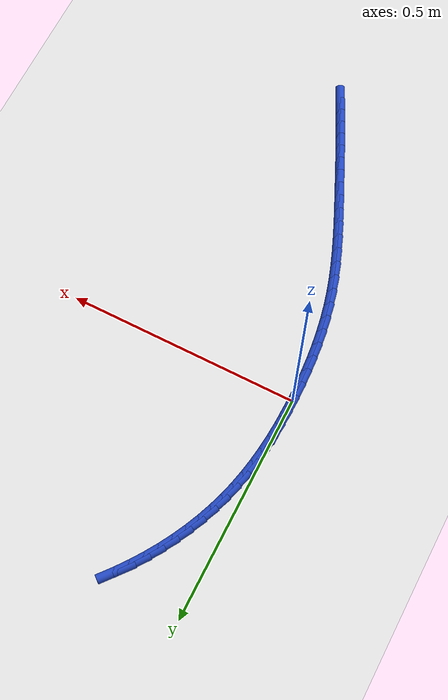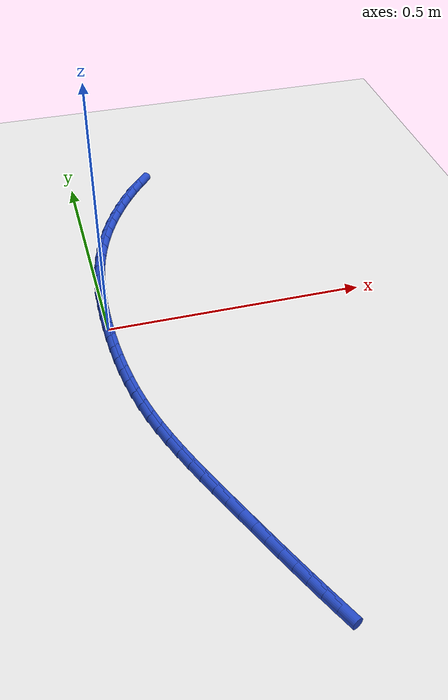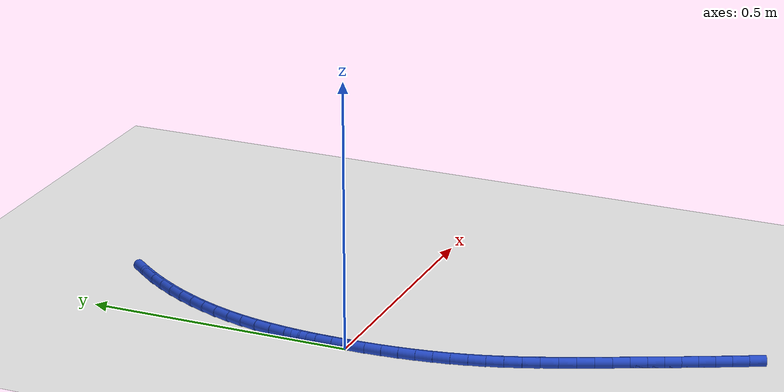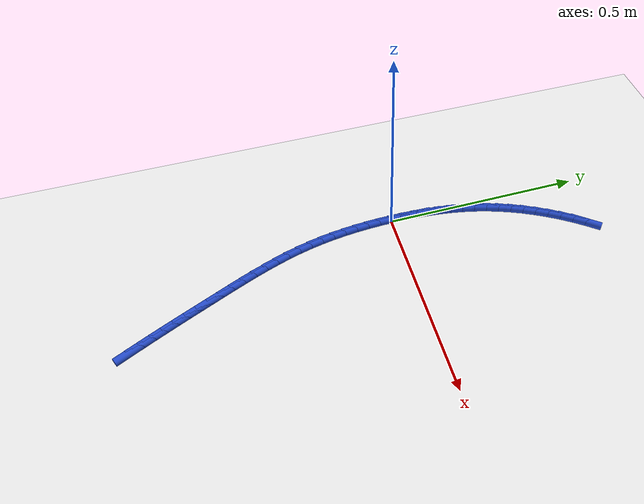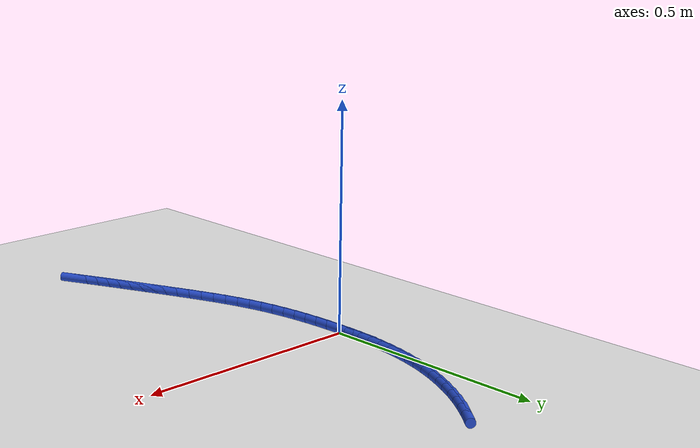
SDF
<sdf version="1.6">
 <world name="default">
  <model name="ground_plane">
   <static>1</static>
   <link name="link">
    <collision name="collision">
     <geometry><plane><normal>0 0 1</normal><size>100 100</size></plane></geometry>
     <surface><friction><ode><mu>100</mu><mu2>50</mu2></ode></friction></surface>
    </collision>
    <visual name="visual">
     <cast_shadows>0</cast_shadows>
     <geometry><plane><normal>0 0 1</normal><size>100 100</size></plane></geometry>
     <material>
      <script><uri>file://media/materials/scripts/gazebo.material</uri><name>Gazebo/WhiteGlow</name></script>
     </material>
    </visual>
   </link>
  </model>
  <model name="line">
   <link name="link_0">
    <pose>-1.3010426069826053e-18 -2.0816681711721685e-17 0.01 0 1.57 1.5652417687050806</pose>
    <collision name="collision">
     <geometry><cylinder><radius>0.01</radius><length>0.08</length></cylinder></geometry>
    </collision>
    <visual name="visual">
     <material>
      <script><name>Gazebo/Blue</name><uri>file://media/materials/scripts/gazebo.material</uri></script>
     </material>
     <geometry><cylinder><radius>0.01</radius><length>0.08</length></cylinder></geometry>
    </visual>
   </link>
   <link name="link_1">
    <pose>0.0001733001976537485 0.031199316410812177 0.01 0 1.57 1.53811177170229</pose>
    <collision name="collision">
     <geometry><cylinder><radius>0.01</radius><length>0.08</length></cylinder></geometry>
    </collision>
    <visual name="visual">
     <material>
      <script><name>Gazebo/Blue</name><uri>file://media/materials/scripts/gazebo.material</uri></script>
     </material>
     <geometry><cylinder><radius>0.01</radius><length>0.08</length></cylinder></geometry>
    </visual>
   </link>
   <link name="link_2">
    <pose>0.0011924847750177342 0.06237066397072591 0.01 0 1.57 1.5073699337999211</pose>
    <collision name="collision">
     <geometry><cylinder><radius>0.01</radius><length>0.08</length></cylinder></geometry>
    </collision>
    <visual name="visual">
     <material>
      <script><name>Gazebo/Blue</name><uri>file://media/materials/scripts/gazebo.material</uri></script>
     </material>
     <geometry><cylinder><radius>0.01</radius><length>0.08</length></cylinder></geometry>
    </visual>
   </link>
   <link name="link_3">
    <pose>0.0031680086409162783 0.09347560223872242 0.01 0 1.57 1.4729705740794885</pose>
    <collision name="collision">
     <geometry><cylinder><radius>0.01</radius><length>0.08</length></cylinder></geometry>
    </collision>
    <visual name="visual">
     <material>
      <script><name>Gazebo/Blue</name><uri>file://media/materials/scripts/gazebo.material</uri></script>
     </material>
     <geometry><cylinder><radius>0.01</radius><length>0.08</length></cylinder></geometry>
    </visual>
   </link>
   <link name="link_4">
    <pose>0.006210326704173702 0.12447569077378302 0.01 0 1.57 1.4348925035926217</pose>
    <collision name="collision">
     <geometry><cylinder><radius>0.01</radius><length>0.08</length></cylinder></geometry>
    </collision>
    <visual name="visual">
     <material>
      <script><name>Gazebo/Blue</name><uri>file://media/materials/scripts/gazebo.material</uri></script>
     </material>
     <geometry><cylinder><radius>0.01</radius><length>0.08</length></cylinder></geometry>
    </visual>
   </link>
   <link name="link_5">
    <pose>0.01042989387361433 0.155332489134889 0.01 0 1.57 1.3931531087541023</pose>
    <collision name="collision">
     <geometry><cylinder><radius>0.01</radius><length>0.08</length></cylinder></geometry>
    </collision>
    <visual name="visual">
     <material>
      <script><name>Gazebo/Blue</name><uri>file://media/materials/scripts/gazebo.material</uri></script>
     </material>
     <geometry><cylinder><radius>0.01</radius><length>0.08</length></cylinder></geometry>
    </visual>
   </link>
   <link name="link_6">
    <pose>0.01593716505806247 0.18600755688102155 0.01 0 1.57 1.3478236340478975</pose>
    <collision name="collision">
     <geometry><cylinder><radius>0.01</radius><length>0.08</length></cylinder></geometry>
    </collision>
    <visual name="visual">
     <material>
      <script><name>Gazebo/Blue</name><uri>file://media/materials/scripts/gazebo.material</uri></script>
     </material>
     <geometry><cylinder><radius>0.01</radius><length>0.08</length></cylinder></geometry>
    </visual>
   </link>
   <link name="link_7">
    <pose>0.022842595166342457 0.21646245357116203 0.01 0 1.57 1.2990565114552943</pose>
    <collision name="collision">
     <geometry><cylinder><radius>0.01</radius><length>0.08</length></cylinder></geometry>
    </collision>
    <visual name="visual">
     <material>
      <script><name>Gazebo/Blue</name><uri>file://media/materials/scripts/gazebo.material</uri></script>
     </material>
     <geometry><cylinder><radius>0.01</radius><length>0.08</length></cylinder></geometry>
    </visual>
   </link>
   <link name="link_8">
    <pose>0.031256233099674874 0.24665867801433464 0.01 0 1.57 1.2485645808949022</pose>
    <collision name="collision">
     <geometry><cylinder><radius>0.01</radius><length>0.08</length></cylinder></geometry>
    </collision>
    <visual name="visual">
     <material>
      <script><name>Gazebo/Blue</name><uri>file://media/materials/scripts/gazebo.material</uri></script>
     </material>
     <geometry><cylinder><radius>0.01</radius><length>0.08</length></cylinder></geometry>
    </visual>
   </link>
   <link name="link_9">
    <pose>0.041235965954750826 0.27654992417217855 0.01 0 1.57 1.199347240741251</pose>
    <collision name="collision">
     <geometry><cylinder><radius>0.01</radius><length>0.08</length></cylinder></geometry>
    </collision>
    <visual name="visual">
     <material>
      <script><name>Gazebo/Blue</name><uri>file://media/materials/scripts/gazebo.material</uri></script>
     </material>
     <geometry><cylinder><radius>0.01</radius><length>0.08</length></cylinder></geometry>
    </visual>
   </link>
   <link name="link_10">
    <pose>0.0527367000599913 0.3060744772376519 0.01 0 1.57 1.1516035880465487</pose>
    <collision name="collision">
     <geometry><cylinder><radius>0.01</radius><length>0.08</length></cylinder></geometry>
    </collision>
    <visual name="visual">
     <material>
      <script><name>Gazebo/Blue</name><uri>file://media/materials/scripts/gazebo.material</uri></script>
     </material>
     <geometry><cylinder><radius>0.01</radius><length>0.08</length></cylinder></geometry>
    </visual>
   </link>
   <link name="link_11">
    <pose>0.0657012727735915 0.3351688165522568 0.01 0 1.57 1.1051662196073389</pose>
    <collision name="collision">
     <geometry><cylinder><radius>0.01</radius><length>0.08</length></cylinder></geometry>
    </collision>
    <visual name="visual">
     <material>
      <script><name>Gazebo/Blue</name><uri>file://media/materials/scripts/gazebo.material</uri></script>
     </material>
     <geometry><cylinder><radius>0.01</radius><length>0.08</length></cylinder></geometry>
    </visual>
   </link>
   <link name="link_12">
    <pose>0.08007252145374649 0.3637694214574944 0.01 0 1.57 1.0598605843184021</pose>
    <collision name="collision">
     <geometry><cylinder><radius>0.01</radius><length>0.08</length></cylinder></geometry>
    </collision>
    <visual name="visual">
     <material>
      <script><name>Gazebo/Blue</name><uri>file://media/materials/scripts/gazebo.material</uri></script>
     </material>
     <geometry><cylinder><radius>0.01</radius><length>0.08</length></cylinder></geometry>
    </visual>
   </link>
   <link name="link_13">
    <pose>0.09579328345865135 0.39181277129486636 0.01 0 1.57 1.0155078279892866</pose>
    <collision name="collision">
     <geometry><cylinder><radius>0.01</radius><length>0.08</length></cylinder></geometry>
    </collision>
    <visual name="visual">
     <material>
      <script><name>Gazebo/Blue</name><uri>file://media/materials/scripts/gazebo.material</uri></script>
     </material>
     <geometry><cylinder><radius>0.01</radius><length>0.08</length></cylinder></geometry>
    </visual>
   </link>
   <link name="link_14">
    <pose>0.11280639614650119 0.41923534540587415 0.01 0 1.57 0.9719267776762458</pose>
    <collision name="collision">
     <geometry><cylinder><radius>0.01</radius><length>0.08</length></cylinder></geometry>
    </collision>
    <visual name="visual">
     <material>
      <script><name>Gazebo/Blue</name><uri>file://media/materials/scripts/gazebo.material</uri></script>
     </material>
     <geometry><cylinder><radius>0.01</radius><length>0.08</length></cylinder></geometry>
    </visual>
   </link>
   <link name="link_15">
    <pose>0.13105469687549107 0.4459736231320193 0.01 0 1.57 0.9289352324854522</pose>
    <collision name="collision">
     <geometry><cylinder><radius>0.01</radius><length>0.08</length></cylinder></geometry>
    </collision>
    <visual name="visual">
     <material>
      <script><name>Gazebo/Blue</name><uri>file://media/materials/scripts/gazebo.material</uri></script>
     </material>
     <geometry><cylinder><radius>0.01</radius><length>0.08</length></cylinder></geometry>
    </visual>
   </link>
   <link name="link_16">
    <pose>0.1504810230038161 0.4719640838148034 0.01 0 1.57 0.8863507195687078</pose>
    <collision name="collision">
     <geometry><cylinder><radius>0.01</radius><length>0.08</length></cylinder></geometry>
    </collision>
    <visual name="visual">
     <material>
      <script><name>Gazebo/Blue</name><uri>file://media/materials/scripts/gazebo.material</uri></script>
     </material>
     <geometry><cylinder><radius>0.01</radius><length>0.08</length></cylinder></geometry>
    </visual>
   </link>
   <link name="link_237">
    <pose>0.20710013761552107 -0.6676483898030733 0.01 0 1.57 -1.1250208477057841</pose>
    <collision name="collision">
     <geometry><cylinder><radius>0.01</radius><length>0.08</length></cylinder></geometry>
    </collision>
    <visual name="visual">
     <material>
      <script><name>Gazebo/Blue</name><uri>file://media/materials/scripts/gazebo.material</uri></script>
     </material>
     <geometry><cylinder><radius>0.01</radius><length>0.08</length></cylinder></geometry>
    </visual>
   </link>
   <link name="link_238">
    <pose>0.19410645324256223 -0.6404567219765179 0.01 0 1.57 -1.1323249458108247</pose>
    <collision name="collision">
     <geometry><cylinder><radius>0.01</radius><length>0.08</length></cylinder></geometry>
    </collision>
    <visual name="visual">
     <material>
      <script><name>Gazebo/Blue</name><uri>file://media/materials/scripts/gazebo.material</uri></script>
     </material>
     <geometry><cylinder><radius>0.01</radius><length>0.08</length></cylinder></geometry>
    </visual>
   </link>
   <link name="link_239">
    <pose>0.18144686077489933 -0.6134590631828972 0.01 0 1.57 -1.1387346182100748</pose>
    <collision name="collision">
     <geometry><cylinder><radius>0.01</radius><length>0.08</length></cylinder></geometry>
    </collision>
    <visual name="visual">
     <material>
      <script><name>Gazebo/Blue</name><uri>file://media/materials/scripts/gazebo.material</uri></script>
     </material>
     <geometry><cylinder><radius>0.01</radius><length>0.08</length></cylinder></geometry>
    </visual>
   </link>
   <link name="link_240">
    <pose>0.1690454314908992 -0.586564842403847 0.01 0 1.57 -1.1441565740283657</pose>
    <collision name="collision">
     <geometry><cylinder><radius>0.01</radius><length>0.08</length></cylinder></geometry>
    </collision>
    <visual name="visual">
     <material>
      <script><name>Gazebo/Blue</name><uri>file://media/materials/scripts/gazebo.material</uri></script>
     </material>
     <geometry><cylinder><radius>0.01</radius><length>0.08</length></cylinder></geometry>
    </visual>
   </link>
   <link name="link_241">
    <pose>0.15682623666892873 -0.5596834886210011 0.01 0 1.57 -1.1485189822893829</pose>
    <collision name="collision">
     <geometry><cylinder><radius>0.01</radius><length>0.08</length></cylinder></geometry>
    </collision>
    <visual name="visual">
     <material>
      <script><name>Gazebo/Blue</name><uri>file://media/materials/scripts/gazebo.material</uri></script>
     </material>
     <geometry><cylinder><radius>0.01</radius><length>0.08</length></cylinder></geometry>
    </visual>
   </link>
   <link name="link_242">
    <pose>0.14471334758735482 -0.5327244308159954 0.01 0 1.57 -1.1517744032294301</pose>
    <collision name="collision">
     <geometry><cylinder><radius>0.01</radius><length>0.08</length></cylinder></geometry>
    </collision>
    <visual name="visual">
     <material>
      <script><name>Gazebo/Blue</name><uri>file://media/materials/scripts/gazebo.material</uri></script>
     </material>
     <geometry><cylinder><radius>0.01</radius><length>0.08</length></cylinder></geometry>
    </visual>
   </link>
   <link name="link_243">
    <pose>0.13263083552454433 -0.505597097970464 0.01 0 1.57 -1.153901345103597</pose>
    <collision name="collision">
     <geometry><cylinder><radius>0.01</radius><length>0.08</length></cylinder></geometry>
    </collision>
    <visual name="visual">
     <material>
      <script><name>Gazebo/Blue</name><uri>file://media/materials/scripts/gazebo.material</uri></script>
     </material>
     <geometry><cylinder><radius>0.01</radius><length>0.08</length></cylinder></geometry>
    </visual>
   </link>
   <link name="link_244">
    <pose>0.1205027717588642 -0.4782109190660425 0.01 0 1.57 -1.1550465610794072</pose>
    <collision name="collision">
     <geometry><cylinder><radius>0.01</radius><length>0.08</length></cylinder></geometry>
    </collision>
    <visual name="visual">
     <material>
      <script><name>Gazebo/Blue</name><uri>file://media/materials/scripts/gazebo.material</uri></script>
     </material>
     <geometry><cylinder><radius>0.01</radius><length>0.08</length></cylinder></geometry>
    </visual>
   </link>
   <link name="link_245">
    <pose>0.10825902306594525 -0.45047777445755954 0.01 0 1.57 -1.1582907528378585</pose>
    <collision name="collision">
     <geometry><cylinder><radius>0.01</radius><length>0.08</length></cylinder></geometry>
    </collision>
    <visual name="visual">
     <material>
      <script><name>Gazebo/Blue</name><uri>file://media/materials/scripts/gazebo.material</uri></script>
     </material>
     <geometry><cylinder><radius>0.01</radius><length>0.08</length></cylinder></geometry>
    </visual>
   </link>
   <link name="link_246">
    <pose>0.09595557431664828 -0.4223628897960293 0.01 0 1.57 -1.1665178948832908</pose>
    <collision name="collision">
     <geometry><cylinder><radius>0.01</radius><length>0.08</length></cylinder></geometry>
    </collision>
    <visual name="visual">
     <material>
      <script><name>Gazebo/Blue</name><uri>file://media/materials/scripts/gazebo.material</uri></script>
     </material>
     <geometry><cylinder><radius>0.01</radius><length>0.08</length></cylinder></geometry>
    </visual>
   </link>
   <link name="link_247">
    <pose>0.08377066489794437 -0.3938832018161079 0.01 0 1.57 -1.1797796147102253</pose>
    <collision name="collision">
     <geometry><cylinder><radius>0.01</radius><length>0.08</length></cylinder></geometry>
    </collision>
    <visual name="visual">
     <material>
      <script><name>Gazebo/Blue</name><uri>file://media/materials/scripts/gazebo.material</uri></script>
     </material>
     <geometry><cylinder><radius>0.01</radius><length>0.08</length></cylinder></geometry>
    </visual>
   </link>
   <link name="link_248">
    <pose>0.07188755674374332 -0.3650577716839503 0.01 0 1.57 -1.1980853755874787</pose>
    <collision name="collision">
     <geometry><cylinder><radius>0.01</radius><length>0.08</length></cylinder></geometry>
    </collision>
    <visual name="visual">
     <material>
      <script><name>Gazebo/Blue</name><uri>file://media/materials/scripts/gazebo.material</uri></script>
     </material>
     <geometry><cylinder><radius>0.01</radius><length>0.08</length></cylinder></geometry>
    </visual>
   </link>
   <link name="link_249">
    <pose>0.060489511787954954 -0.33590566056571197 0.01 0 1.57 -1.2215130435790653</pose>
    <collision name="collision">
     <geometry><cylinder><radius>0.01</radius><length>0.08</length></cylinder></geometry>
    </collision>
    <visual name="visual">
     <material>
      <script><name>Gazebo/Blue</name><uri>file://media/materials/scripts/gazebo.material</uri></script>
     </material>
     <geometry><cylinder><radius>0.01</radius><length>0.08</length></cylinder></geometry>
    </visual>
   </link>
   <link name="link_250">
    <pose>0.04975979196448908 -0.3064459296275483 0.01 0 1.57 -1.2501947617181177</pose>
    <collision name="collision">
     <geometry><cylinder><radius>0.01</radius><length>0.08</length></cylinder></geometry>
    </collision>
    <visual name="visual">
     <material>
      <script><name>Gazebo/Blue</name><uri>file://media/materials/scripts/gazebo.material</uri></script>
     </material>
     <geometry><cylinder><radius>0.01</radius><length>0.08</length></cylinder></geometry>
    </visual>
   </link>
   <link name="link_251">
    <pose>0.03988165920725552 -0.2766976400356145 0.01 0 1.57 -1.2842996549846017</pose>
    <collision name="collision">
     <geometry><cylinder><radius>0.01</radius><length>0.08</length></cylinder></geometry>
    </collision>
    <visual name="visual">
     <material>
      <script><name>Gazebo/Blue</name><uri>file://media/materials/scripts/gazebo.material</uri></script>
     </material>
     <geometry><cylinder><radius>0.01</radius><length>0.08</length></cylinder></geometry>
    </visual>
   </link>
   <link name="link_252">
    <pose>0.03103837545016384 -0.24667985295606498 0.01 0 1.57 -1.3234430314377734</pose>
    <collision name="collision">
     <geometry><cylinder><radius>0.01</radius><length>0.08</length></cylinder></geometry>
    </collision>
    <visual name="visual">
     <material>
      <script><name>Gazebo/Blue</name><uri>file://media/materials/scripts/gazebo.material</uri></script>
     </material>
     <geometry><cylinder><radius>0.01</radius><length>0.08</length></cylinder></geometry>
    </visual>
   </link>
   <link name="link_253">
    <pose>0.02339511102132253 -0.21641244163901788 0.01 0 1.57 -1.3628777852357805</pose>
    <collision name="collision">
     <geometry><cylinder><radius>0.01</radius><length>0.08</length></cylinder></geometry>
    </collision>
    <visual name="visual">
     <material>
      <script><name>Gazebo/Blue</name><uri>file://media/materials/scripts/gazebo.material</uri></script>
     </material>
     <geometry><cylinder><radius>0.01</radius><length>0.08</length></cylinder></geometry>
    </visual>
   </link>
   <link name="link_254">
    <pose>0.016962666204848285 -0.185922208594388 0.01 0 1.57 -1.4000962983753673</pose>
    <collision name="collision">
     <geometry><cylinder><radius>0.01</radius><length>0.08</length></cylinder></geometry>
    </collision>
    <visual name="visual">
     <material>
      <script><name>Gazebo/Blue</name><uri>file://media/materials/scripts/gazebo.material</uri></script>
     </material>
     <geometry><cylinder><radius>0.01</radius><length>0.08</length></cylinder></geometry>
    </visual>
   </link>
   <link name="link_255">
    <pose>0.011673649791483671 -0.1552394661398082 0.01 0 1.57 -1.435031071179266</pose>
    <collision name="collision">
     <geometry><cylinder><radius>0.01</radius><length>0.08</length></cylinder></geometry>
    </collision>
    <visual name="visual">
     <material>
      <script><name>Gazebo/Blue</name><uri>file://media/materials/scripts/gazebo.material</uri></script>
     </material>
     <geometry><cylinder><radius>0.01</radius><length>0.08</length></cylinder></geometry>
    </visual>
   </link>
   <link name="link_256">
    <pose>0.007460061959191396 -0.12439455391191676 0.01 0 1.57 -1.4676614264057262</pose>
    <collision name="collision">
     <geometry><cylinder><radius>0.01</radius><length>0.08</length></cylinder></geometry>
    </collision>
    <visual name="visual">
     <material>
      <script><name>Gazebo/Blue</name><uri>file://media/materials/scripts/gazebo.material</uri></script>
     </material>
     <geometry><cylinder><radius>0.01</radius><length>0.08</length></cylinder></geometry>
    </visual>
   </link>
   <link name="link_257">
    <pose>0.0042539028859341806 -0.09341781154735194 0.01 0 1.57 -1.4979889864699847</pose>
    <collision name="collision">
     <geometry><cylinder><radius>0.01</radius><length>0.08</length></cylinder></geometry>
    </collision>
    <visual name="visual">
     <material>
      <script><name>Gazebo/Blue</name><uri>file://media/materials/scripts/gazebo.material</uri></script>
     </material>
     <geometry><cylinder><radius>0.01</radius><length>0.08</length></cylinder></geometry>
    </visual>
   </link>
   <link name="link_258">
    <pose>0.001987172749674736 -0.06233957868275208 0.01 0 1.57 -1.526032393858645</pose>
    <collision name="collision">
     <geometry><cylinder><radius>0.01</radius><length>0.08</length></cylinder></geometry>
    </collision>
    <visual name="visual">
     <material>
      <script><name>Gazebo/Blue</name><uri>file://media/materials/scripts/gazebo.material</uri></script>
     </material>
     <geometry><cylinder><radius>0.01</radius><length>0.08</length></cylinder></geometry>
    </visual>
   </link>
   <link name="link_259">
    <pose>0.0005918717283757747 -0.03119019495475539 0.01 0 1.57 -1.5518223928096981</pose>
    <collision name="collision">
     <geometry><cylinder><radius>0.01</radius><length>0.08</length></cylinder></geometry>
    </collision>
    <visual name="visual">
     <material>
      <script><name>Gazebo/Blue</name><uri>file://media/materials/scripts/gazebo.material</uri></script>
     </material>
     <geometry><cylinder><radius>0.01</radius><length>0.08</length></cylinder></geometry>
    </visual>
   </link>
   <link name="link_260">
    <pose>8.673617379884035e-18 -1.6653345369377348e-16 0.01 0 1.57 1.5661952478638879</pose>
    <collision name="collision">
     <geometry><cylinder><radius>0.01</radius><length>0.08</length></cylinder></geometry>
    </collision>
    <visual name="visual">
     <material>
      <script><name>Gazebo/Blue</name><uri>file://media/materials/scripts/gazebo.material</uri></script>
     </material>
     <geometry><cylinder><radius>0.01</radius><length>0.08</length></cylinder></geometry>
    </visual>
   </link>
   <link name="link_261">
    <pose>0.0001435577425101522 0.031200666544875324 0.01 0 1.57 1.5447929967693554</pose>
    <collision name="collision">
     <geometry><cylinder><radius>0.01</radius><length>0.08</length></cylinder></geometry>
    </collision>
    <visual name="visual">
     <material>
      <script><name>Gazebo/Blue</name><uri>file://media/materials/scripts/gazebo.material</uri></script>
     </material>
     <geometry><cylinder><radius>0.01</radius><length>0.08</length></cylinder></geometry>
    </visual>
   </link>
   <link name="link_262">
    <pose>0.0009545451338689205 0.06238146504323282 0.01 0 1.57 1.5554957780895147</pose>
    <collision name="collision">
     <geometry><cylinder><radius>0.01</radius><length>0.08</length></cylinder></geometry>
    </collision>
    <visual name="visual">
     <material>
      <script><name>Gazebo/Blue</name><uri>file://media/materials/scripts/gazebo.material</uri></script>
     </material>
     <geometry><cylinder><radius>0.01</radius><length>0.08</length></cylinder></geometry>
    </visual>
   </link>
  </model>
 </world>
</sdf>
